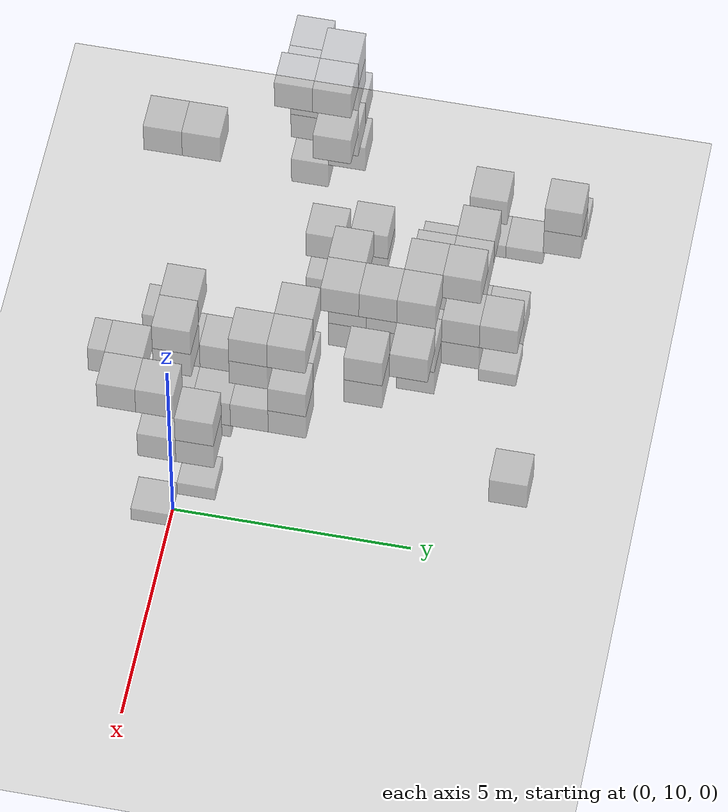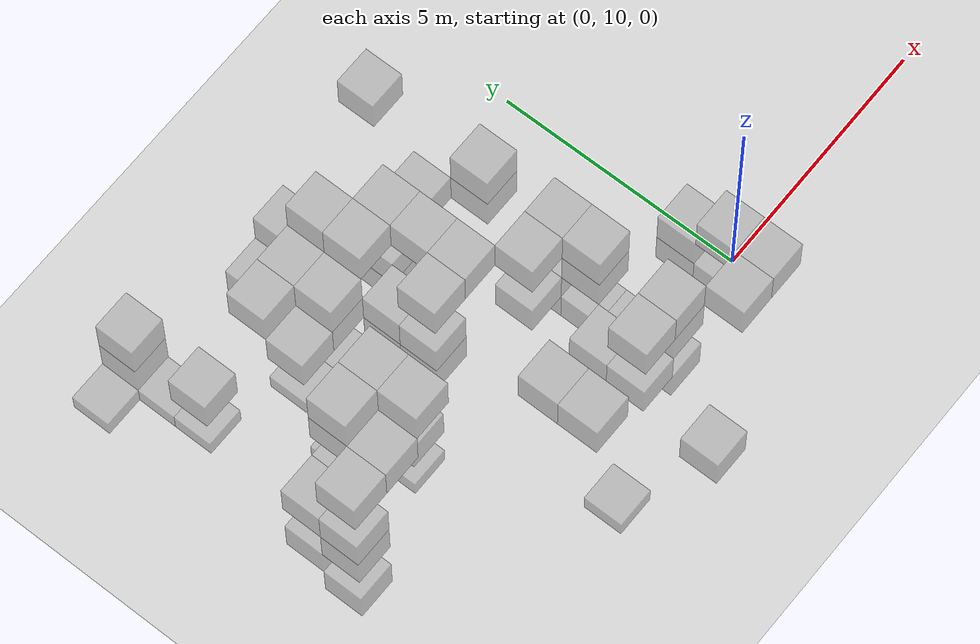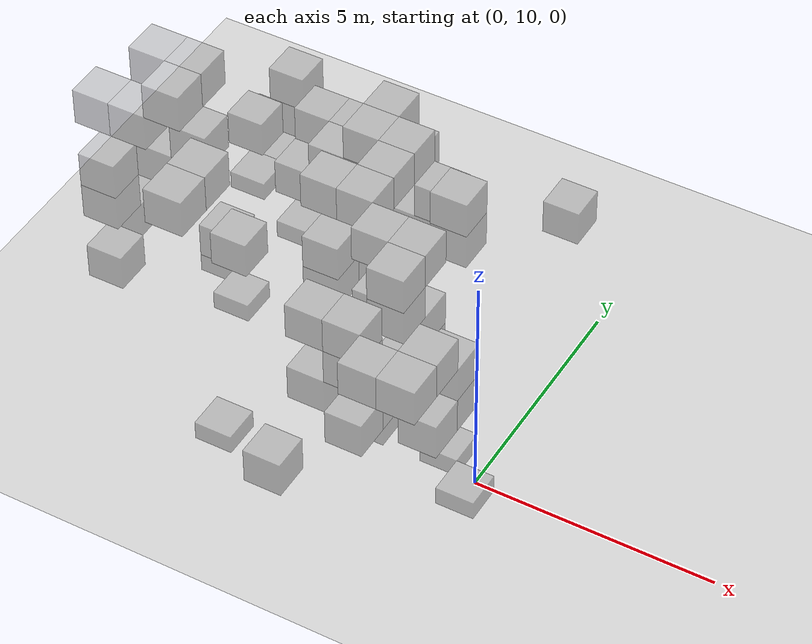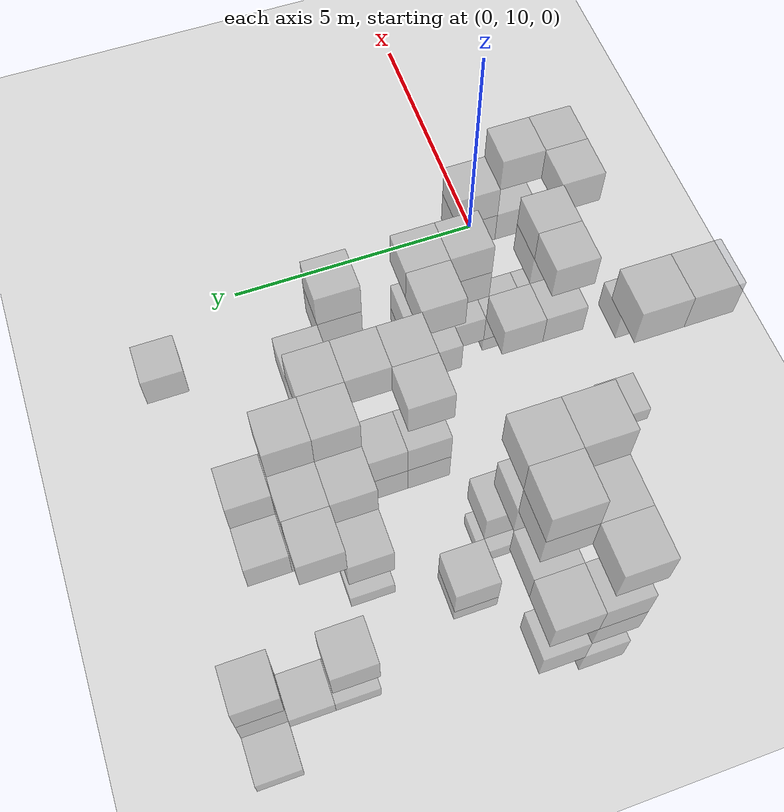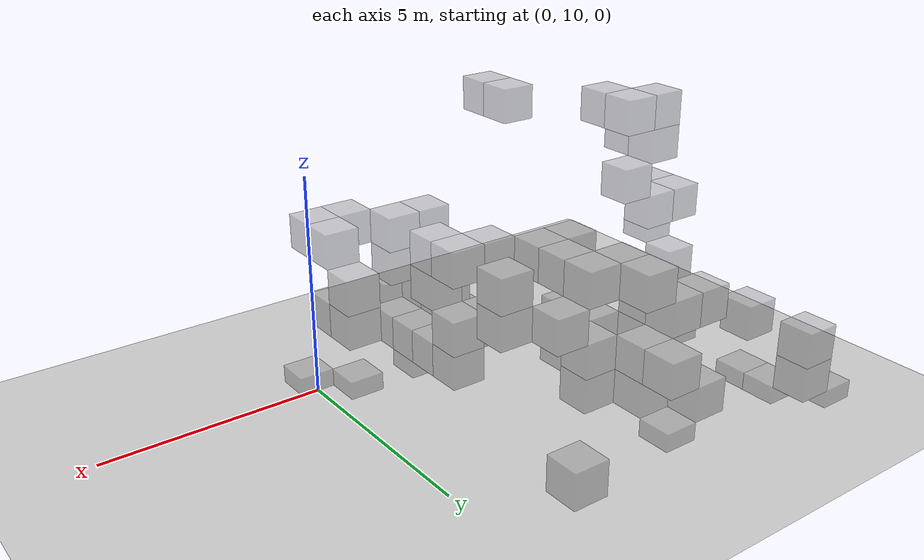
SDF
<sdf version="1.6">
 <world name="cramped_environment">
  <include><uri>model://sun</uri></include>
  <include><uri>model://ground_plane</uri></include>
  <model name="obs_4">
   <static>true</static>
   <pose>-4.00 14.40 1.60 0 0 0</pose>
   <link name="link">
    <collision name="collision"><geometry><box><size>0.80 0.80 0.80</size></box></geometry></collision>
    <visual name="visual">
     <transparency>0.5</transparency>
     <geometry><box><size>0.80 0.80 0.80</size></box></geometry>
     <material>
      <script><name>Gazebo/Grey</name><uri>file://media/materials/scripts/gazebo.material</uri></script>
     </material>
    </visual>
   </link>
  </model>
  <model name="obs_14">
   <static>true</static>
   <pose>-2.40 11.20 0.80 0 0 0</pose>
   <link name="link">
    <collision name="collision"><geometry><box><size>0.80 0.80 0.80</size></box></geometry></collision>
    <visual name="visual">
     <transparency>0.5</transparency>
     <geometry><box><size>0.80 0.80 0.80</size></box></geometry>
     <material>
      <script><name>Gazebo/Grey</name><uri>file://media/materials/scripts/gazebo.material</uri></script>
     </material>
    </visual>
   </link>
  </model>
  <model name="obs_18">
   <static>true</static>
   <pose>-2.40 12.00 1.60 0 0 0</pose>
   <link name="link">
    <collision name="collision"><geometry><box><size>0.80 0.80 0.80</size></box></geometry></collision>
    <visual name="visual">
     <transparency>0.5</transparency>
     <geometry><box><size>0.80 0.80 0.80</size></box></geometry>
     <material>
      <script><name>Gazebo/Grey</name><uri>file://media/materials/scripts/gazebo.material</uri></script>
     </material>
    </visual>
   </link>
  </model>
  <model name="obs_19">
   <static>true</static>
   <pose>-7.20 12.80 0.80 0 0 0</pose>
   <link name="link">
    <collision name="collision"><geometry><box><size>0.80 0.80 0.80</size></box></geometry></collision>
    <visual name="visual">
     <transparency>0.5</transparency>
     <geometry><box><size>0.80 0.80 0.80</size></box></geometry>
     <material>
      <script><name>Gazebo/Grey</name><uri>file://media/materials/scripts/gazebo.material</uri></script>
     </material>
    </visual>
   </link>
  </model>
  <model name="obs_21">
   <static>true</static>
   <pose>-7.20 12.00 4.00 0 0 0</pose>
   <link name="link">
    <collision name="collision"><geometry><box><size>0.80 0.80 0.80</size></box></geometry></collision>
    <visual name="visual">
     <transparency>0.5</transparency>
     <geometry><box><size>0.80 0.80 0.80</size></box></geometry>
     <material>
      <script><name>Gazebo/Grey</name><uri>file://media/materials/scripts/gazebo.material</uri></script>
     </material>
    </visual>
   </link>
  </model>
  <model name="obs_24">
   <static>true</static>
   <pose>-4.80 16.00 0.00 0 0 0</pose>
   <link name="link">
    <collision name="collision"><geometry><box><size>0.80 0.80 0.80</size></box></geometry></collision>
    <visual name="visual">
     <transparency>0.5</transparency>
     <geometry><box><size>0.80 0.80 0.80</size></box></geometry>
     <material>
      <script><name>Gazebo/Grey</name><uri>file://media/materials/scripts/gazebo.material</uri></script>
     </material>
    </visual>
   </link>
  </model>
  <model name="obs_31">
   <static>true</static>
   <pose>-4.80 12.80 1.60 0 0 0</pose>
   <link name="link">
    <collision name="collision"><geometry><box><size>0.80 0.80 0.80</size></box></geometry></collision>
    <visual name="visual">
     <transparency>0.5</transparency>
     <geometry><box><size>0.80 0.80 0.80</size></box></geometry>
     <material>
      <script><name>Gazebo/Grey</name><uri>file://media/materials/scripts/gazebo.material</uri></script>
     </material>
    </visual>
   </link>
  </model>
  <model name="obs_41">
   <static>true</static>
   <pose>-4.00 12.80 3.20 0 0 0</pose>
   <link name="link">
    <collision name="collision"><geometry><box><size>0.80 0.80 0.80</size></box></geometry></collision>
    <visual name="visual">
     <transparency>0.5</transparency>
     <geometry><box><size>0.80 0.80 0.80</size></box></geometry>
     <material>
      <script><name>Gazebo/Grey</name><uri>file://media/materials/scripts/gazebo.material</uri></script>
     </material>
    </visual>
   </link>
  </model>
  <model name="obs_42">
   <static>true</static>
   <pose>-3.20 9.60 1.60 0 0 0</pose>
   <link name="link">
    <collision name="collision"><geometry><box><size>0.80 0.80 0.80</size></box></geometry></collision>
    <visual name="visual">
     <transparency>0.5</transparency>
     <geometry><box><size>0.80 0.80 0.80</size></box></geometry>
     <material>
      <script><name>Gazebo/Grey</name><uri>file://media/materials/scripts/gazebo.material</uri></script>
     </material>
    </visual>
   </link>
  </model>
  <model name="obs_51">
   <static>true</static>
   <pose>-8.80 11.20 0.80 0 0 0</pose>
   <link name="link">
    <collision name="collision"><geometry><box><size>0.80 0.80 0.80</size></box></geometry></collision>
    <visual name="visual">
     <transparency>0.5</transparency>
     <geometry><box><size>0.80 0.80 0.80</size></box></geometry>
     <material>
      <script><name>Gazebo/Grey</name><uri>file://media/materials/scripts/gazebo.material</uri></script>
     </material>
    </visual>
   </link>
  </model>
  <model name="obs_52">
   <static>true</static>
   <pose>-0.80 10.40 0.00 0 0 0</pose>
   <link name="link">
    <collision name="collision"><geometry><box><size>0.80 0.80 0.80</size></box></geometry></collision>
    <visual name="visual">
     <transparency>0.5</transparency>
     <geometry><box><size>0.80 0.80 0.80</size></box></geometry>
     <material>
      <script><name>Gazebo/Grey</name><uri>file://media/materials/scripts/gazebo.material</uri></script>
     </material>
    </visual>
   </link>
  </model>
  <model name="obs_54">
   <static>true</static>
   <pose>-8.80 12.00 1.60 0 0 0</pose>
   <link name="link">
    <collision name="collision"><geometry><box><size>0.80 0.80 0.80</size></box></geometry></collision>
    <visual name="visual">
     <transparency>0.5</transparency>
     <geometry><box><size>0.80 0.80 0.80</size></box></geometry>
     <material>
      <script><name>Gazebo/Grey</name><uri>file://media/materials/scripts/gazebo.material</uri></script>
     </material>
    </visual>
   </link>
  </model>
  <model name="obs_69">
   <static>true</static>
   <pose>-2.40 11.20 3.20 0 0 0</pose>
   <link name="link">
    <collision name="collision"><geometry><box><size>0.80 0.80 0.80</size></box></geometry></collision>
    <visual name="visual">
     <transparency>0.5</transparency>
     <geometry><box><size>0.80 0.80 0.80</size></box></geometry>
     <material>
      <script><name>Gazebo/Grey</name><uri>file://media/materials/scripts/gazebo.material</uri></script>
     </material>
    </visual>
   </link>
  </model>
  <model name="obs_70">
   <static>true</static>
   <pose>-8.00 12.00 3.20 0 0 0</pose>
   <link name="link">
    <collision name="collision"><geometry><box><size>0.80 0.80 0.80</size></box></geometry></collision>
    <visual name="visual">
     <transparency>0.5</transparency>
     <geometry><box><size>0.80 0.80 0.80</size></box></geometry>
     <material>
      <script><name>Gazebo/Grey</name><uri>file://media/materials/scripts/gazebo.material</uri></script>
     </material>
    </visual>
   </link>
  </model>
  <model name="obs_72">
   <static>true</static>
   <pose>-7.20 11.20 5.60 0 0 0</pose>
   <link name="link">
    <collision name="collision"><geometry><box><size>0.80 0.80 0.80</size></box></geometry></collision>
    <visual name="visual">
     <transparency>0.5</transparency>
     <geometry><box><size>0.80 0.80 0.80</size></box></geometry>
     <material>
      <script><name>Gazebo/Grey</name><uri>file://media/materials/scripts/gazebo.material</uri></script>
     </material>
    </visual>
   </link>
  </model>
  <model name="obs_74">
   <static>true</static>
   <pose>-4.80 15.20 1.60 0 0 0</pose>
   <link name="link">
    <collision name="collision"><geometry><box><size>0.80 0.80 0.80</size></box></geometry></collision>
    <visual name="visual">
     <transparency>0.5</transparency>
     <geometry><box><size>0.80 0.80 0.80</size></box></geometry>
     <material>
      <script><name>Gazebo/Grey</name><uri>file://media/materials/scripts/gazebo.material</uri></script>
     </material>
    </visual>
   </link>
  </model>
  <model name="obs_75">
   <static>true</static>
   <pose>-6.40 15.20 2.40 0 0 0</pose>
   <link name="link">
    <collision name="collision"><geometry><box><size>0.80 0.80 0.80</size></box></geometry></collision>
    <visual name="visual">
     <transparency>0.5</transparency>
     <geometry><box><size>0.80 0.80 0.80</size></box></geometry>
     <material>
      <script><name>Gazebo/Grey</name><uri>file://media/materials/scripts/gazebo.material</uri></script>
     </material>
    </visual>
   </link>
  </model>
  <model name="obs_84">
   <static>true</static>
   <pose>-3.20 12.00 1.60 0 0 0</pose>
   <link name="link">
    <collision name="collision"><geometry><box><size>0.80 0.80 0.80</size></box></geometry></collision>
    <visual name="visual">
     <transparency>0.5</transparency>
     <geometry><box><size>0.80 0.80 0.80</size></box></geometry>
     <material>
      <script><name>Gazebo/Grey</name><uri>file://media/materials/scripts/gazebo.material</uri></script>
     </material>
    </visual>
   </link>
  </model>
  <model name="obs_85">
   <static>true</static>
   <pose>-5.60 8.80 5.60 0 0 0</pose>
   <link name="link">
    <collision name="collision"><geometry><box><size>0.80 0.80 0.80</size></box></geometry></collision>
    <visual name="visual">
     <transparency>0.5</transparency>
     <geometry><box><size>0.80 0.80 0.80</size></box></geometry>
     <material>
      <script><name>Gazebo/Grey</name><uri>file://media/materials/scripts/gazebo.material</uri></script>
     </material>
    </visual>
   </link>
  </model>
  <model name="obs_92">
   <static>true</static>
   <pose>-0.80 9.60 1.60 0 0 0</pose>
   <link name="link">
    <collision name="collision"><geometry><box><size>0.80 0.80 0.80</size></box></geometry></collision>
    <visual name="visual">
     <transparency>0.5</transparency>
     <geometry><box><size>0.80 0.80 0.80</size></box></geometry>
     <material>
      <script><name>Gazebo/Grey</name><uri>file://media/materials/scripts/gazebo.material</uri></script>
     </material>
    </visual>
   </link>
  </model>
  <model name="obs_94">
   <static>true</static>
   <pose>-8.80 11.20 3.20 0 0 0</pose>
   <link name="link">
    <collision name="collision"><geometry><box><size>0.80 0.80 0.80</size></box></geometry></collision>
    <visual name="visual">
     <transparency>0.5</transparency>
     <geometry><box><size>0.80 0.80 0.80</size></box></geometry>
     <material>
      <script><name>Gazebo/Grey</name><uri>file://media/materials/scripts/gazebo.material</uri></script>
     </material>
    </visual>
   </link>
  </model>
  <model name="obs_99">
   <static>true</static>
   <pose>-0.80 10.40 2.40 0 0 0</pose>
   <link name="link">
    <collision name="collision"><geometry><box><size>0.80 0.80 0.80</size></box></geometry></collision>
    <visual name="visual">
     <transparency>0.5</transparency>
     <geometry><box><size>0.80 0.80 0.80</size></box></geometry>
     <material>
      <script><name>Gazebo/Grey</name><uri>file://media/materials/scripts/gazebo.material</uri></script>
     </material>
    </visual>
   </link>
  </model>
  <model name="obs_101">
   <static>true</static>
   <pose>-8.00 15.20 0.00 0 0 0</pose>
   <link name="link">
    <collision name="collision"><geometry><box><size>0.80 0.80 0.80</size></box></geometry></collision>
    <visual name="visual">
     <transparency>0.5</transparency>
     <geometry><box><size>0.80 0.80 0.80</size></box></geometry>
     <material>
      <script><name>Gazebo/Grey</name><uri>file://media/materials/scripts/gazebo.material</uri></script>
     </material>
    </visual>
   </link>
  </model>
  <model name="obs_104">
   <static>true</static>
   <pose>-2.40 13.60 3.20 0 0 0</pose>
   <link name="link">
    <collision name="collision"><geometry><box><size>0.80 0.80 0.80</size></box></geometry></collision>
    <visual name="visual">
     <transparency>0.5</transparency>
     <geometry><box><size>0.80 0.80 0.80</size></box></geometry>
     <material>
      <script><name>Gazebo/Grey</name><uri>file://media/materials/scripts/gazebo.material</uri></script>
     </material>
    </visual>
   </link>
  </model>
  <model name="obs_109">
   <static>true</static>
   <pose>-5.60 14.40 0.00 0 0 0</pose>
   <link name="link">
    <collision name="collision"><geometry><box><size>0.80 0.80 0.80</size></box></geometry></collision>
    <visual name="visual">
     <transparency>0.5</transparency>
     <geometry><box><size>0.80 0.80 0.80</size></box></geometry>
     <material>
      <script><name>Gazebo/Grey</name><uri>file://media/materials/scripts/gazebo.material</uri></script>
     </material>
    </visual>
   </link>
  </model>
  <model name="obs_111">
   <static>true</static>
   <pose>-8.00 11.20 4.80 0 0 0</pose>
   <link name="link">
    <collision name="collision"><geometry><box><size>0.80 0.80 0.80</size></box></geometry></collision>
    <visual name="visual">
     <transparency>0.5</transparency>
     <geometry><box><size>0.80 0.80 0.80</size></box></geometry>
     <material>
      <script><name>Gazebo/Grey</name><uri>file://media/materials/scripts/gazebo.material</uri></script>
     </material>
    </visual>
   </link>
  </model>
  <model name="obs_113">
   <static>true</static>
   <pose>-5.60 15.20 0.80 0 0 0</pose>
   <link name="link">
    <collision name="collision"><geometry><box><size>0.80 0.80 0.80</size></box></geometry></collision>
    <visual name="visual">
     <transparency>0.5</transparency>
     <geometry><box><size>0.80 0.80 0.80</size></box></geometry>
     <material>
      <script><name>Gazebo/Grey</name><uri>file://media/materials/scripts/gazebo.material</uri></script>
     </material>
    </visual>
   </link>
  </model>
  <model name="obs_114">
   <static>true</static>
   <pose>-6.40 12.00 0.00 0 0 0</pose>
   <link name="link">
    <collision name="collision"><geometry><box><size>0.80 0.80 0.80</size></box></geometry></collision>
    <visual name="visual">
     <transparency>0.5</transparency>
     <geometry><box><size>0.80 0.80 0.80</size></box></geometry>
     <material>
      <script><name>Gazebo/Grey</name><uri>file://media/materials/scripts/gazebo.material</uri></script>
     </material>
    </visual>
   </link>
  </model>
  <model name="obs_115">
   <static>true</static>
   <pose>-8.00 12.00 5.60 0 0 0</pose>
   <link name="link">
    <collision name="collision"><geometry><box><size>0.80 0.80 0.80</size></box></geometry></collision>
    <visual name="visual">
     <transparency>0.5</transparency>
     <geometry><box><size>0.80 0.80 0.80</size></box></geometry>
     <material>
      <script><name>Gazebo/Grey</name><uri>file://media/materials/scripts/gazebo.material</uri></script>
     </material>
    </visual>
   </link>
  </model>
  <model name="obs_118">
   <static>true</static>
   <pose>-3.20 14.40 2.40 0 0 0</pose>
   <link name="link">
    <collision name="collision"><geometry><box><size>0.80 0.80 0.80</size></box></geometry></collision>
    <visual name="visual">
     <transparency>0.5</transparency>
     <geometry><box><size>0.80 0.80 0.80</size></box></geometry>
     <material>
      <script><name>Gazebo/Grey</name><uri>file://media/materials/scripts/gazebo.material</uri></script>
     </material>
    </visual>
   </link>
  </model>
  <model name="obs_144">
   <static>true</static>
   <pose>-2.40 9.60 0.80 0 0 0</pose>
   <link name="link">
    <collision name="collision"><geometry><box><size>0.80 0.80 0.80</size></box></geometry></collision>
    <visual name="visual">
     <transparency>0.5</transparency>
     <geometry><box><size>0.80 0.80 0.80</size></box></geometry>
     <material>
      <script><name>Gazebo/Grey</name><uri>file://media/materials/scripts/gazebo.material</uri></script>
     </material>
    </visual>
   </link>
  </model>
  <model name="obs_145">
   <static>true</static>
   <pose>-0.80 8.80 3.20 0 0 0</pose>
   <link name="link">
    <collision name="collision"><geometry><box><size>0.80 0.80 0.80</size></box></geometry></collision>
    <visual name="visual">
     <transparency>0.5</transparency>
     <geometry><box><size>0.80 0.80 0.80</size></box></geometry>
     <material>
      <script><name>Gazebo/Grey</name><uri>file://media/materials/scripts/gazebo.material</uri></script>
     </material>
    </visual>
   </link>
  </model>
  <model name="obs_146">
   <static>true</static>
   <pose>-1.60 8.80 3.20 0 0 0</pose>
   <link name="link">
    <collision name="collision"><geometry><box><size>0.80 0.80 0.80</size></box></geometry></collision>
    <visual name="visual">
     <transparency>0.5</transparency>
     <geometry><box><size>0.80 0.80 0.80</size></box></geometry>
     <material>
      <script><name>Gazebo/Grey</name><uri>file://media/materials/scripts/gazebo.material</uri></script>
     </material>
    </visual>
   </link>
  </model>
  <model name="obs_151">
   <static>true</static>
   <pose>-2.40 10.40 0.80 0 0 0</pose>
   <link name="link">
    <collision name="collision"><geometry><box><size>0.80 0.80 0.80</size></box></geometry></collision>
    <visual name="visual">
     <transparency>0.5</transparency>
     <geometry><box><size>0.80 0.80 0.80</size></box></geometry>
     <material>
      <script><name>Gazebo/Grey</name><uri>file://media/materials/scripts/gazebo.material</uri></script>
     </material>
    </visual>
   </link>
  </model>
  <model name="obs_157">
   <static>true</static>
   <pose>-6.40 14.40 0.00 0 0 0</pose>
   <link name="link">
    <collision name="collision"><geometry><box><size>0.80 0.80 0.80</size></box></geometry></collision>
    <visual name="visual">
     <transparency>0.5</transparency>
     <geometry><box><size>0.80 0.80 0.80</size></box></geometry>
     <material>
      <script><name>Gazebo/Grey</name><uri>file://media/materials/scripts/gazebo.material</uri></script>
     </material>
    </visual>
   </link>
  </model>
  <model name="obs_167">
   <static>true</static>
   <pose>-5.60 14.40 2.40 0 0 0</pose>
   <link name="link">
    <collision name="collision"><geometry><box><size>0.80 0.80 0.80</size></box></geometry></collision>
    <visual name="visual">
     <transparency>0.5</transparency>
     <geometry><box><size>0.80 0.80 0.80</size></box></geometry>
     <material>
      <script><name>Gazebo/Grey</name><uri>file://media/materials/scripts/gazebo.material</uri></script>
     </material>
    </visual>
   </link>
  </model>
  <model name="obs_172">
   <static>true</static>
   <pose>-4.00 14.40 0.80 0 0 0</pose>
   <link name="link">
    <collision name="collision"><geometry><box><size>0.80 0.80 0.80</size></box></geometry></collision>
    <visual name="visual">
     <transparency>0.5</transparency>
     <geometry><box><size>0.80 0.80 0.80</size></box></geometry>
     <material>
      <script><name>Gazebo/Grey</name><uri>file://media/materials/scripts/gazebo.material</uri></script>
     </material>
    </visual>
   </link>
  </model>
  <model name="obs_188">
   <static>true</static>
   <pose>-2.40 12.00 0.80 0 0 0</pose>
   <link name="link">
    <collision name="collision"><geometry><box><size>0.80 0.80 0.80</size></box></geometry></collision>
    <visual name="visual">
     <transparency>0.5</transparency>
     <geometry><box><size>0.80 0.80 0.80</size></box></geometry>
     <material>
      <script><name>Gazebo/Grey</name><uri>file://media/materials/scripts/gazebo.material</uri></script>
     </material>
    </visual>
   </link>
  </model>
  <model name="obs_189">
   <static>true</static>
   <pose>-7.20 12.80 0.00 0 0 0</pose>
   <link name="link">
    <collision name="collision"><geometry><box><size>0.80 0.80 0.80</size></box></geometry></collision>
    <visual name="visual">
     <transparency>0.5</transparency>
     <geometry><box><size>0.80 0.80 0.80</size></box></geometry>
     <material>
      <script><name>Gazebo/Grey</name><uri>file://media/materials/scripts/gazebo.material</uri></script>
     </material>
    </visual>
   </link>
  </model>
  <model name="obs_199">
   <static>true</static>
   <pose>-8.00 16.80 1.60 0 0 0</pose>
   <link name="link">
    <collision name="collision"><geometry><box><size>0.80 0.80 0.80</size></box></geometry></collision>
    <visual name="visual">
     <transparency>0.5</transparency>
     <geometry><box><size>0.80 0.80 0.80</size></box></geometry>
     <material>
      <script><name>Gazebo/Grey</name><uri>file://media/materials/scripts/gazebo.material</uri></script>
     </material>
    </visual>
   </link>
  </model>
  <model name="obs_201">
   <static>true</static>
   <pose>-2.40 9.60 3.20 0 0 0</pose>
   <link name="link">
    <collision name="collision"><geometry><box><size>0.80 0.80 0.80</size></box></geometry></collision>
    <visual name="visual">
     <transparency>0.5</transparency>
     <geometry><box><size>0.80 0.80 0.80</size></box></geometry>
     <material>
      <script><name>Gazebo/Grey</name><uri>file://media/materials/scripts/gazebo.material</uri></script>
     </material>
    </visual>
   </link>
  </model>
  <model name="obs_202">
   <static>true</static>
   <pose>-4.80 12.80 0.80 0 0 0</pose>
   <link name="link">
    <collision name="collision"><geometry><box><size>0.80 0.80 0.80</size></box></geometry></collision>
    <visual name="visual">
     <transparency>0.5</transparency>
     <geometry><box><size>0.80 0.80 0.80</size></box></geometry>
     <material>
      <script><name>Gazebo/Grey</name><uri>file://media/materials/scripts/gazebo.material</uri></script>
     </material>
    </visual>
   </link>
  </model>
  <model name="obs_205">
   <static>true</static>
   <pose>-4.80 13.60 1.60 0 0 0</pose>
   <link name="link">
    <collision name="collision"><geometry><box><size>0.80 0.80 0.80</size></box></geometry></collision>
    <visual name="visual">
     <transparency>0.5</transparency>
     <geometry><box><size>0.80 0.80 0.80</size></box></geometry>
     <material>
      <script><name>Gazebo/Grey</name><uri>file://media/materials/scripts/gazebo.material</uri></script>
     </material>
    </visual>
   </link>
  </model>
  <model name="obs_218">
   <static>true</static>
   <pose>-4.00 13.60 3.20 0 0 0</pose>
   <link name="link">
    <collision name="collision"><geometry><box><size>0.80 0.80 0.80</size></box></geometry></collision>
    <visual name="visual">
     <transparency>0.5</transparency>
     <geometry><box><size>0.80 0.80 0.80</size></box></geometry>
     <material>
      <script><name>Gazebo/Grey</name><uri>file://media/materials/scripts/gazebo.material</uri></script>
     </material>
    </visual>
   </link>
  </model>
  <model name="obs_219">
   <static>true</static>
   <pose>-3.20 10.40 1.60 0 0 0</pose>
   <link name="link">
    <collision name="collision"><geometry><box><size>0.80 0.80 0.80</size></box></geometry></collision>
    <visual name="visual">
     <transparency>0.5</transparency>
     <geometry><box><size>0.80 0.80 0.80</size></box></geometry>
     <material>
      <script><name>Gazebo/Grey</name><uri>file://media/materials/scripts/gazebo.material</uri></script>
     </material>
    </visual>
   </link>
  </model>
  <model name="obs_228">
   <static>true</static>
   <pose>-4.00 14.40 3.20 0 0 0</pose>
   <link name="link">
    <collision name="collision"><geometry><box><size>0.80 0.80 0.80</size></box></geometry></collision>
    <visual name="visual">
     <transparency>0.5</transparency>
     <geometry><box><size>0.80 0.80 0.80</size></box></geometry>
     <material>
      <script><name>Gazebo/Grey</name><uri>file://media/materials/scripts/gazebo.material</uri></script>
     </material>
    </visual>
   </link>
  </model>
  <model name="obs_238">
   <static>true</static>
   <pose>-2.40 11.20 2.40 0 0 0</pose>
   <link name="link">
    <collision name="collision"><geometry><box><size>0.80 0.80 0.80</size></box></geometry></collision>
    <visual name="visual">
     <transparency>0.5</transparency>
     <geometry><box><size>0.80 0.80 0.80</size></box></geometry>
     <material>
      <script><name>Gazebo/Grey</name><uri>file://media/materials/scripts/gazebo.material</uri></script>
     </material>
    </visual>
   </link>
  </model>
  <model name="obs_244">
   <static>true</static>
   <pose>-2.40 12.00 3.20 0 0 0</pose>
   <link name="link">
    <collision name="collision"><geometry><box><size>0.80 0.80 0.80</size></box></geometry></collision>
    <visual name="visual">
     <transparency>0.5</transparency>
     <geometry><box><size>0.80 0.80 0.80</size></box></geometry>
     <material>
      <script><name>Gazebo/Grey</name><uri>file://media/materials/scripts/gazebo.material</uri></script>
     </material>
    </visual>
   </link>
  </model>
  <model name="obs_246">
   <static>true</static>
   <pose>-4.80 15.20 0.80 0 0 0</pose>
   <link name="link">
    <collision name="collision"><geometry><box><size>0.80 0.80 0.80</size></box></geometry></collision>
    <visual name="visual">
     <transparency>0.5</transparency>
     <geometry><box><size>0.80 0.80 0.80</size></box></geometry>
     <material>
      <script><name>Gazebo/Grey</name><uri>file://media/materials/scripts/gazebo.material</uri></script>
     </material>
    </visual>
   </link>
  </model>
  <model name="obs_247">
   <static>true</static>
   <pose>-7.20 12.00 5.60 0 0 0</pose>
   <link name="link">
    <collision name="collision"><geometry><box><size>0.80 0.80 0.80</size></box></geometry></collision>
    <visual name="visual">
     <transparency>0.5</transparency>
     <geometry><box><size>0.80 0.80 0.80</size></box></geometry>
     <material>
      <script><name>Gazebo/Grey</name><uri>file://media/materials/scripts/gazebo.material</uri></script>
     </material>
    </visual>
   </link>
  </model>
  <model name="obs_250">
   <static>true</static>
   <pose>-4.80 16.00 1.60 0 0 0</pose>
   <link name="link">
    <collision name="collision"><geometry><box><size>0.80 0.80 0.80</size></box></geometry></collision>
    <visual name="visual">
     <transparency>0.5</transparency>
     <geometry><box><size>0.80 0.80 0.80</size></box></geometry>
     <material>
      <script><name>Gazebo/Grey</name><uri>file://media/materials/scripts/gazebo.material</uri></script>
     </material>
    </visual>
   </link>
  </model>
  <model name="obs_258">
   <static>true</static>
   <pose>-4.80 12.80 3.20 0 0 0</pose>
   <link name="link">
    <collision name="collision"><geometry><box><size>0.80 0.80 0.80</size></box></geometry></collision>
    <visual name="visual">
     <transparency>0.5</transparency>
     <geometry><box><size>0.80 0.80 0.80</size></box></geometry>
     <material>
      <script><name>Gazebo/Grey</name><uri>file://media/materials/scripts/gazebo.material</uri></script>
     </material>
    </visual>
   </link>
  </model>
  <model name="obs_267">
   <static>true</static>
   <pose>-5.60 9.60 5.60 0 0 0</pose>
   <link name="link">
    <collision name="collision"><geometry><box><size>0.80 0.80 0.80</size></box></geometry></collision>
    <visual name="visual">
     <transparency>0.5</transparency>
     <geometry><box><size>0.80 0.80 0.80</size></box></geometry>
     <material>
      <script><name>Gazebo/Grey</name><uri>file://media/materials/scripts/gazebo.material</uri></script>
     </material>
    </visual>
   </link>
  </model>
  <model name="obs_271">
   <static>true</static>
   <pose>-3.20 9.60 3.20 0 0 0</pose>
   <link name="link">
    <collision name="collision"><geometry><box><size>0.80 0.80 0.80</size></box></geometry></collision>
    <visual name="visual">
     <transparency>0.5</transparency>
     <geometry><box><size>0.80 0.80 0.80</size></box></geometry>
     <material>
      <script><name>Gazebo/Grey</name><uri>file://media/materials/scripts/gazebo.material</uri></script>
     </material>
    </visual>
   </link>
  </model>
  <model name="obs_272">
   <static>true</static>
   <pose>-1.60 16.80 0.80 0 0 0</pose>
   <link name="link">
    <collision name="collision"><geometry><box><size>0.80 0.80 0.80</size></box></geometry></collision>
    <visual name="visual">
     <transparency>0.5</transparency>
     <geometry><box><size>0.80 0.80 0.80</size></box></geometry>
     <material>
      <script><name>Gazebo/Grey</name><uri>file://media/materials/scripts/gazebo.material</uri></script>
     </material>
    </visual>
   </link>
  </model>
  <model name="obs_278">
   <static>true</static>
   <pose>-8.80 11.20 2.40 0 0 0</pose>
   <link name="link">
    <collision name="collision"><geometry><box><size>0.80 0.80 0.80</size></box></geometry></collision>
    <visual name="visual">
     <transparency>0.5</transparency>
     <geometry><box><size>0.80 0.80 0.80</size></box></geometry>
     <material>
      <script><name>Gazebo/Grey</name><uri>file://media/materials/scripts/gazebo.material</uri></script>
     </material>
    </visual>
   </link>
  </model>
  <model name="obs_281">
   <static>true</static>
   <pose>-0.80 10.40 1.60 0 0 0</pose>
   <link name="link">
    <collision name="collision"><geometry><box><size>0.80 0.80 0.80</size></box></geometry></collision>
    <visual name="visual">
     <transparency>0.5</transparency>
     <geometry><box><size>0.80 0.80 0.80</size></box></geometry>
     <material>
      <script><name>Gazebo/Grey</name><uri>file://media/materials/scripts/gazebo.material</uri></script>
     </material>
    </visual>
   </link>
  </model>
  <model name="obs_282">
   <static>true</static>
   <pose>-8.80 12.00 3.20 0 0 0</pose>
   <link name="link">
    <collision name="collision"><geometry><box><size>0.80 0.80 0.80</size></box></geometry></collision>
    <visual name="visual">
     <transparency>0.5</transparency>
     <geometry><box><size>0.80 0.80 0.80</size></box></geometry>
     <material>
      <script><name>Gazebo/Grey</name><uri>file://media/materials/scripts/gazebo.material</uri></script>
     </material>
    </visual>
   </link>
  </model>
  <model name="obs_285">
   <static>true</static>
   <pose>-2.40 13.60 2.40 0 0 0</pose>
   <link name="link">
    <collision name="collision"><geometry><box><size>0.80 0.80 0.80</size></box></geometry></collision>
    <visual name="visual">
     <transparency>0.5</transparency>
     <geometry><box><size>0.80 0.80 0.80</size></box></geometry>
     <material>
      <script><name>Gazebo/Grey</name><uri>file://media/materials/scripts/gazebo.material</uri></script>
     </material>
    </visual>
   </link>
  </model>
  <model name="obs_289">
   <static>true</static>
   <pose>-8.00 16.00 0.00 0 0 0</pose>
   <link name="link">
    <collision name="collision"><geometry><box><size>0.80 0.80 0.80</size></box></geometry></collision>
    <visual name="visual">
     <transparency>0.5</transparency>
     <geometry><box><size>0.80 0.80 0.80</size></box></geometry>
     <material>
      <script><name>Gazebo/Grey</name><uri>file://media/materials/scripts/gazebo.material</uri></script>
     </material>
    </visual>
   </link>
  </model>
  <model name="obs_296">
   <static>true</static>
   <pose>-4.80 14.40 3.20 0 0 0</pose>
   <link name="link">
    <collision name="collision"><geometry><box><size>0.80 0.80 0.80</size></box></geometry></collision>
    <visual name="visual">
     <transparency>0.5</transparency>
     <geometry><box><size>0.80 0.80 0.80</size></box></geometry>
     <material>
      <script><name>Gazebo/Grey</name><uri>file://media/materials/scripts/gazebo.material</uri></script>
     </material>
    </visual>
   </link>
  </model>
  <model name="obs_298">
   <static>true</static>
   <pose>-8.00 12.00 4.80 0 0 0</pose>
   <link name="link">
    <collision name="collision"><geometry><box><size>0.80 0.80 0.80</size></box></geometry></collision>
    <visual name="visual">
     <transparency>0.5</transparency>
     <geometry><box><size>0.80 0.80 0.80</size></box></geometry>
     <material>
      <script><name>Gazebo/Grey</name><uri>file://media/materials/scripts/gazebo.material</uri></script>
     </material>
    </visual>
   </link>
  </model>
  <model name="obs_300">
   <static>true</static>
   <pose>-5.60 16.00 0.80 0 0 0</pose>
   <link name="link">
    <collision name="collision"><geometry><box><size>0.80 0.80 0.80</size></box></geometry></collision>
    <visual name="visual">
     <transparency>0.5</transparency>
     <geometry><box><size>0.80 0.80 0.80</size></box></geometry>
     <material>
      <script><name>Gazebo/Grey</name><uri>file://media/materials/scripts/gazebo.material</uri></script>
     </material>
    </visual>
   </link>
  </model>
  <model name="obs_302">
   <static>true</static>
   <pose>-4.80 15.20 3.20 0 0 0</pose>
   <link name="link">
    <collision name="collision"><geometry><box><size>0.80 0.80 0.80</size></box></geometry></collision>
    <visual name="visual">
     <transparency>0.5</transparency>
     <geometry><box><size>0.80 0.80 0.80</size></box></geometry>
     <material>
      <script><name>Gazebo/Grey</name><uri>file://media/materials/scripts/gazebo.material</uri></script>
     </material>
    </visual>
   </link>
  </model>
  <model name="obs_303">
   <static>true</static>
   <pose>-4.80 8.80 0.00 0 0 0</pose>
   <link name="link">
    <collision name="collision"><geometry><box><size>0.80 0.80 0.80</size></box></geometry></collision>
    <visual name="visual">
     <transparency>0.5</transparency>
     <geometry><box><size>0.80 0.80 0.80</size></box></geometry>
     <material>
      <script><name>Gazebo/Grey</name><uri>file://media/materials/scripts/gazebo.material</uri></script>
     </material>
    </visual>
   </link>
  </model>
  <model name="obs_310">
   <static>true</static>
   <pose>-3.20 12.00 3.20 0 0 0</pose>
   <link name="link">
    <collision name="collision"><geometry><box><size>0.80 0.80 0.80</size></box></geometry></collision>
    <visual name="visual">
     <transparency>0.5</transparency>
     <geometry><box><size>0.80 0.80 0.80</size></box></geometry>
     <material>
      <script><name>Gazebo/Grey</name><uri>file://media/materials/scripts/gazebo.material</uri></script>
     </material>
    </visual>
   </link>
  </model>
  <model name="obs_324">
   <static>true</static>
   <pose>-0.80 9.60 3.20 0 0 0</pose>
   <link name="link">
    <collision name="collision"><geometry><box><size>0.80 0.80 0.80</size></box></geometry></collision>
    <visual name="visual">
     <transparency>0.5</transparency>
     <geometry><box><size>0.80 0.80 0.80</size></box></geometry>
     <material>
      <script><name>Gazebo/Grey</name><uri>file://media/materials/scripts/gazebo.material</uri></script>
     </material>
    </visual>
   </link>
  </model>
  <model name="obs_326">
   <static>true</static>
   <pose>-2.40 10.40 0.00 0 0 0</pose>
   <link name="link">
    <collision name="collision"><geometry><box><size>0.80 0.80 0.80</size></box></geometry></collision>
    <visual name="visual">
     <transparency>0.5</transparency>
     <geometry><box><size>0.80 0.80 0.80</size></box></geometry>
     <material>
      <script><name>Gazebo/Grey</name><uri>file://media/materials/scripts/gazebo.material</uri></script>
     </material>
    </visual>
   </link>
  </model>
  <model name="obs_328">
   <static>true</static>
   <pose>-8.80 11.20 4.80 0 0 0</pose>
   <link name="link">
    <collision name="collision"><geometry><box><size>0.80 0.80 0.80</size></box></geometry></collision>
    <visual name="visual">
     <transparency>0.5</transparency>
     <geometry><box><size>0.80 0.80 0.80</size></box></geometry>
     <material>
      <script><name>Gazebo/Grey</name><uri>file://media/materials/scripts/gazebo.material</uri></script>
     </material>
    </visual>
   </link>
  </model>
  <model name="obs_336">
   <static>true</static>
   <pose>-8.00 15.20 1.60 0 0 0</pose>
   <link name="link">
    <collision name="collision"><geometry><box><size>0.80 0.80 0.80</size></box></geometry></collision>
    <visual name="visual">
     <transparency>0.5</transparency>
     <geometry><box><size>0.80 0.80 0.80</size></box></geometry>
     <material>
      <script><name>Gazebo/Grey</name><uri>file://media/materials/scripts/gazebo.material</uri></script>
     </material>
    </visual>
   </link>
  </model>
  <model name="obs_343">
   <static>true</static>
   <pose>-5.60 14.40 1.60 0 0 0</pose>
   <link name="link">
    <collision name="collision"><geometry><box><size>0.80 0.80 0.80</size></box></geometry></collision>
    <visual name="visual">
     <transparency>0.5</transparency>
     <geometry><box><size>0.80 0.80 0.80</size></box></geometry>
     <material>
      <script><name>Gazebo/Grey</name><uri>file://media/materials/scripts/gazebo.material</uri></script>
     </material>
    </visual>
   </link>
  </model>
  <model name="obs_348">
   <static>true</static>
   <pose>-5.60 15.20 2.40 0 0 0</pose>
   <link name="link">
    <collision name="collision"><geometry><box><size>0.80 0.80 0.80</size></box></geometry></collision>
    <visual name="visual">
     <transparency>0.5</transparency>
     <geometry><box><size>0.80 0.80 0.80</size></box></geometry>
     <material>
      <script><name>Gazebo/Grey</name><uri>file://media/materials/scripts/gazebo.material</uri></script>
     </material>
    </visual>
   </link>
  </model>
  <model name="obs_349">
   <static>true</static>
   <pose>-6.40 12.00 1.60 0 0 0</pose>
   <link name="link">
    <collision name="collision"><geometry><box><size>0.80 0.80 0.80</size></box></geometry></collision>
    <visual name="visual">
     <transparency>0.5</transparency>
     <geometry><box><size>0.80 0.80 0.80</size></box></geometry>
     <material>
      <script><name>Gazebo/Grey</name><uri>file://media/materials/scripts/gazebo.material</uri></script>
     </material>
    </visual>
   </link>
  </model>
  <model name="obs_350">
   <static>true</static>
   <pose>-3.20 8.00 0.80 0 0 0</pose>
   <link name="link">
    <collision name="collision"><geometry><box><size>0.80 0.80 0.80</size></box></geometry></collision>
    <visual name="visual">
     <transparency>0.5</transparency>
     <geometry><box><size>0.80 0.80 0.80</size></box></geometry>
     <material>
      <script><name>Gazebo/Grey</name><uri>file://media/materials/scripts/gazebo.material</uri></script>
     </material>
    </visual>
   </link>
  </model>
  <model name="obs_353">
   <static>true</static>
   <pose>-8.80 16.80 0.00 0 0 0</pose>
   <link name="link">
    <collision name="collision"><geometry><box><size>0.80 0.80 0.80</size></box></geometry></collision>
    <visual name="visual">
     <transparency>0.5</transparency>
     <geometry><box><size>0.80 0.80 0.80</size></box></geometry>
     <material>
      <script><name>Gazebo/Grey</name><uri>file://media/materials/scripts/gazebo.material</uri></script>
     </material>
    </visual>
   </link>
  </model>
  <model name="obs_371">
   <static>true</static>
   <pose>-8.00 16.80 0.80 0 0 0</pose>
   <link name="link">
    <collision name="collision"><geometry><box><size>0.80 0.80 0.80</size></box></geometry></collision>
    <visual name="visual">
     <transparency>0.5</transparency>
     <geometry><box><size>0.80 0.80 0.80</size></box></geometry>
     <material>
      <script><name>Gazebo/Grey</name><uri>file://media/materials/scripts/gazebo.material</uri></script>
     </material>
    </visual>
   </link>
  </model>
  <model name="obs_375">
   <static>true</static>
   <pose>-2.40 9.60 2.40 0 0 0</pose>
   <link name="link">
    <collision name="collision"><geometry><box><size>0.80 0.80 0.80</size></box></geometry></collision>
    <visual name="visual">
     <transparency>0.5</transparency>
     <geometry><box><size>0.80 0.80 0.80</size></box></geometry>
     <material>
      <script><name>Gazebo/Grey</name><uri>file://media/materials/scripts/gazebo.material</uri></script>
     </material>
    </visual>
   </link>
  </model>
  <model name="obs_380">
   <static>true</static>
   <pose>-4.80 13.60 0.80 0 0 0</pose>
   <link name="link">
    <collision name="collision"><geometry><box><size>0.80 0.80 0.80</size></box></geometry></collision>
    <visual name="visual">
     <transparency>0.5</transparency>
     <geometry><box><size>0.80 0.80 0.80</size></box></geometry>
     <material>
      <script><name>Gazebo/Grey</name><uri>file://media/materials/scripts/gazebo.material</uri></script>
     </material>
    </visual>
   </link>
  </model>
  <model name="obs_382">
   <static>true</static>
   <pose>0.00 9.60 0.00 0 0 0</pose>
   <link name="link">
    <collision name="collision"><geometry><box><size>0.80 0.80 0.80</size></box></geometry></collision>
    <visual name="visual">
     <transparency>0.5</transparency>
     <geometry><box><size>0.80 0.80 0.80</size></box></geometry>
     <material>
      <script><name>Gazebo/Grey</name><uri>file://media/materials/scripts/gazebo.material</uri></script>
     </material>
    </visual>
   </link>
  </model>
  <model name="obs_394">
   <static>true</static>
   <pose>-6.40 14.40 1.60 0 0 0</pose>
   <link name="link">
    <collision name="collision"><geometry><box><size>0.80 0.80 0.80</size></box></geometry></collision>
    <visual name="visual">
     <transparency>0.5</transparency>
     <geometry><box><size>0.80 0.80 0.80</size></box></geometry>
     <material>
      <script><name>Gazebo/Grey</name><uri>file://media/materials/scripts/gazebo.material</uri></script>
     </material>
    </visual>
   </link>
  </model>
 </world>
</sdf>
